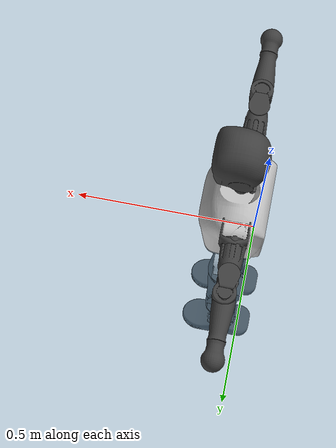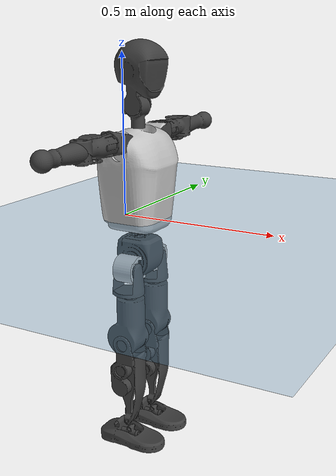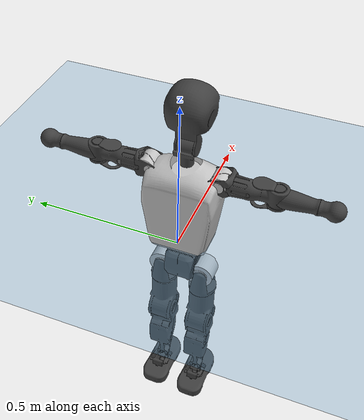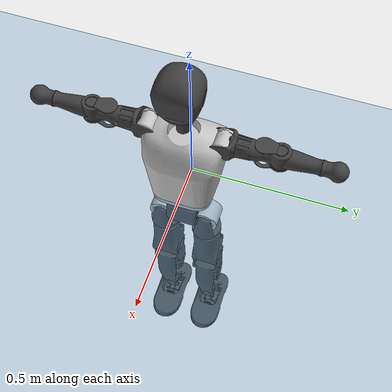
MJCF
<mujoco model="T1">
  <compiler angle="radian" assetdir="assets" balanceinertia="true" inertiafromgeom="false"/>

  <option timestep="0.005" density="1.2" viscosity="2e-05"/>

  <size nkey="1"/>

  <visual>
    <quality shadowsize="8192"/>
    <map shadowclip="0.5"/>
  </visual>

  <default>
    <default class="/">
      <joint armature="0.01" damping="0.01" frictionloss="0.1"/>
      <geom contype="0" conaffinity="0" group="1" solref="-1000 -80"/>
      <site size="0.01 0.005 0.005" group="5"/>
      <general forcelimited="true" biastype="affine" gainprm="25" biasprm="0 -25 -0.6"/>
      <default class="t1">
        <geom rgba="0.25 0.25 0.25 1"/>
        <default class="visual">
          <geom type="mesh" group="2"/>
        </default>
        <default class="collision">
          <geom group="3"/>
        </default>
        <default class="foot">
          <geom size="0.1115 0.05 0.015" type="box" condim="6" group="4" priority="1" solimp="0.015 1 0.015"/>
        </default>
        <default class="reward_collision_sphere">
          <geom group="5" rgba="1 0 0 1"/>
        </default>
      </default>
    </default>
  </default>

  <asset>
    <texture type="skybox" colorspace="auto" name="//unnamed_texture_0" builtin="gradient" rgb1="0.95 0.95 0.95" rgb2="0.95 0.95 0.95" width="100" height="600"/>
    <texture type="2d" colorspace="auto" name="texplane" builtin="checker" rgb1="0.345 0.575 0.748" rgb2="0.345 0.575 0.748" markrgb="1 1 1" width="512" height="512"/>
    <material name="MatPlane" class="/" texture="texplane" texuniform="true" texrepeat="2 2" specular="0.9"/>
    <mesh name="Trunk" class="/" file="Trunk.stl"/>
    <mesh name="H1" class="/" file="H1.stl"/>
    <mesh name="H2" class="/" file="H2.stl"/>
    <mesh name="AL1" class="/" file="AL1.stl"/>
    <mesh name="AL2" class="/" file="AL2.stl"/>
    <mesh name="AL3" class="/" file="AL3.stl"/>
    <mesh name="left_hand_link" class="/" file="left_hand_link.stl"/>
    <mesh name="AR1" class="/" file="AR1.stl"/>
    <mesh name="AR2" class="/" file="AR2.stl"/>
    <mesh name="AR3" class="/" file="AR3.stl"/>
    <mesh name="right_hand_link" class="/" file="right_hand_link.stl"/>
    <mesh name="Waist" class="/" file="Waist.stl"/>
    <mesh name="Hip_Pitch_Left" class="/" file="Hip_Pitch_Left.stl"/>
    <mesh name="Hip_Roll_Left" class="/" file="Hip_Roll_Left.stl"/>
    <mesh name="Hip_Yaw_Left" class="/" file="Hip_Yaw_Left.stl"/>
    <mesh name="Shank_Left" class="/" file="Shank_Left.stl"/>
    <mesh name="Ankle_Cross_Left" class="/" file="Ankle_Cross_Left.stl"/>
    <mesh name="left_foot_link" class="/" file="left_foot_link.stl"/>
    <mesh name="Hip_Pitch_Right" class="/" file="Hip_Pitch_Right.stl"/>
    <mesh name="Hip_Roll_Right" class="/" file="Hip_Roll_Right.stl"/>
    <mesh name="Hip_Yaw_Right" class="/" file="Hip_Yaw_Right.stl"/>
    <mesh name="Shank_Right" class="/" file="Shank_Right.stl"/>
    <mesh name="Ankle_Cross_Right" class="/" file="Ankle_Cross_Right.stl"/>
    <mesh name="right_foot_link" class="/" file="right_foot_link.stl"/>
  </asset>

  <worldbody>
    <geom name="floor" class="/" size="100 100 0.125" type="plane" group="0" material="MatPlane"/>
    <light name="toplight_shadow" class="/" pos="0 0 5" dir="0.0990148 0.0990148 -0.990148" type="directional" ambient="0.04 0.04 0.04" diffuse="0.55 0.55 0.55" specular="0.12 0.12 0.12"/>
    <light name="toplight_fill" class="/" pos="0 0 5" dir="0.0990148 0.0990148 -0.990148" type="directional" castshadow="false" ambient="0.04 0.04 0.04" diffuse="0.3 0.3 0.3" specular="0.08 0.08 0.08"/>
    <body name="trunk" childclass="t1" pos="0.000119055 -0.000148834 0.00273499" quat="1 -7.68458e-05 -0.00010965 -0.00010007">
      <inertial pos="0.0491248 -0.00374317 0.118459" quat="0.999851 0.0119358 -0.0102828 0.00709334" mass="7.9666" diaginertia="0.0486441 0.00870027 0.10292"/>
      <joint name="//unnamed_joint_0" type="free" armature="0" damping="0" frictionloss="0"/>
      <geom name="//unnamed_geom_1" class="visual" rgba="0.76 0.76 0.76 1" mesh="Trunk"/>
      <geom name="//unnamed_geom_2" class="collision" size="0.066773 0.0890306 0.133546" pos="0.0528128 0 0.136368" type="box"/>
      <geom name="//unnamed_geom_3" class="reward_collision_sphere" size="0.102385" pos="0.0528128 0 0.11364"/>
      <geom name="//unnamed_geom_4" class="reward_collision_sphere" size="0.0133546" pos="0.0528128 0.055616 0"/>
      <geom name="//unnamed_geom_5" class="reward_collision_sphere" size="0.0133546" pos="0.0528128 -0.055616 0"/>
      <geom name="//unnamed_geom_6" class="reward_collision_sphere" size="0.0133546" pos="0.0528128 0.0700108 0.204552"/>
      <geom name="//unnamed_geom_7" class="reward_collision_sphere" size="0.0133546" pos="0.0528128 -0.0700108 0.204552"/>
      <site name="imu" pos="-0.000600985 0.011492 -0.0101551" size="0.00890306"/>
      <camera name="track" pos="0 -1.30861 0" quat="0.707107 0.707107 0 0" mode="trackcom"/>
      <camera name="ego_camera" pos="0.107386 0 0.477287" quat="-0.5 -0.5 0.5 0.5"/>
      <body name="H1" pos="0.0540386 -0.00328659 0.274625" quat="0.999999 -0.000906873 -0.000751981 -0.000133315">
        <inertial pos="-0.0010558 -0.00076531 0.0672602" quat="0.764022 -0.0123996 0.00857355 0.645014" mass="0.301752" diaginertia="0.000122038 2.73062e-05 0.000277216"/>
        <joint name="AAHead_yaw" pos="0 0 0" axis="-0.00239244 -0.00817617 0.999964" stiffness="0.000357124" range="-1.52867 1.59927" armature="0.00925569" damping="0" frictionloss="0.0763902"/>
        <geom name="//unnamed_geom_8" class="visual" mesh="H1"/>
        <body name="H2" pos="-0.000367247 -0.00115399 0.0695859" quat="1 -8.38195e-05 -0.000253292 0.000367195">
          <inertial pos="0.0039259 0.00307497 0.114766" quat="0.990158 0.0926235 -0.0711777 -0.0770863" mass="0.445383" diaginertia="0.00107262 0.000226261 0.00328799"/>
          <joint name="Head_pitch" pos="0 0 0" axis="-0.0101557 -0.999909 -0.00883241" range="-1.2169 0.350925" armature="0.00856411" damping="0.00764203" frictionloss="0.087291"/>
          <geom name="//unnamed_geom_9" class="visual" mesh="H2"/>
          <geom name="//unnamed_geom_10" class="collision" size="0.0712245" pos="0.00880214 0 0.125004"/>
          <geom name="//unnamed_geom_11" class="reward_collision_sphere" size="0.0801276" pos="0.0176043 0 0.11364"/>
        </body>
      </body>
      <body name="AL1" pos="0.0496378 0.0687623 0.246423" quat="1 0.000417004 0.000326935 0.000298259">
        <inertial pos="0.000523913 0.0265598 -0.000128778" quat="0.506252 0.490836 -0.499524 0.503254" mass="0.356305" diaginertia="0.000676034 0.000150302 0.000541279"/>
        <joint name="Left_Shoulder_Pitch" pos="0 0 0" axis="0.0137472 0.99989 0.00564736" range="-3.27266 1.22837" armature="0.00750134" damping="0" frictionloss="0.078558"/>
        <geom name="//unnamed_geom_12" class="visual" rgba="0.76 0.76 0.76 1" mesh="AL1"/>
        <body name="AL2" pos="-0.000757528 0.0298575 6.69408e-05" quat="1 0.000555125 -0.000682831 0.000437986">
          <inertial pos="0.00464846 0.0274719 -0.000345235" quat="0.486091 0.513541 -0.497373 0.502604" mass="0.110639" diaginertia="0.000206382 4.08264e-05 0.000324364"/>
          <joint name="Left_Shoulder_Roll" pos="0 0 0" axis="-0.999978 0.00565691 -0.00348363" range="-1.5659 1.73645" armature="0.0101465" damping="0.0209966" frictionloss="0.0928547"/>
          <geom name="//unnamed_geom_13" class="visual" mesh="AL2"/>
          <body name="AL3" pos="-0.00215258 0.0374575 0.000112129" quat="0.999999 0.000446939 0.000508377 -0.00086965">
            <inertial pos="0.00164039 0.0556659 0.00204193" quat="0.705903 0.708289 0.000673254 -0.00511597" mass="0.731207" diaginertia="0.00680559 0.00157193 0.00117851"/>
            <joint name="Left_Elbow_Pitch" pos="0 0 0" axis="0.00531196 -0.999985 0.00121106" stiffness="0.00996632" range="-2.25233 2.29648" armature="0.00999463" damping="0.0104657" frictionloss="0.0950811"/>
            <geom name="//unnamed_geom_14" class="visual" mesh="AL3"/>
            <geom name="//unnamed_geom_15" class="collision" size="0.0267092 0.066773" pos="0 0.0327153 0" quat="0.707105 0.707108 0 0" type="cylinder"/>
            <geom name="//unnamed_geom_16" class="reward_collision_sphere" size="0.032051"/>
            <body name="left_hand_link" pos="-0.00228861 0.098244 -0.0016003" quat="1 -0.000250157 -0.000512324 -0.000462655">
              <inertial pos="0.000528449 0.0745071 -0.000540782" quat="0.707499 0.70671 0.000103548 -0.00245963" mass="0.224796" diaginertia="0.00442782 0.00101382 0.000397664"/>
              <joint name="Left_Elbow_Yaw" pos="0 0 0" axis="-0.00440528 -0.012259 0.999915" stiffness="0.00751827" range="-2.4914 0.0282156" armature="0.00784681" damping="0.00135378" frictionloss="0.100597"/>
              <geom name="//unnamed_geom_17" class="visual" mesh="left_hand_link"/>
              <geom name="//unnamed_geom_18" class="collision" size="0.0267092 0.0779018" pos="0 0.0850598 0" quat="0.707105 0.707108 0 0" type="cylinder"/>
              <geom name="//unnamed_geom_19" class="reward_collision_sphere" size="0.0445153"/>
              <geom name="//unnamed_geom_20" class="reward_collision_sphere" size="0.0311607" pos="0 0.0719737 0"/>
              <geom name="//unnamed_geom_21" class="reward_collision_sphere" size="0.0311607" pos="0 0.140676 0"/>
            </body>
          </body>
        </body>
      </body>
      <body name="AR1" pos="0.0496607 -0.0662836 0.246442" quat="1 -4.76145e-05 0.000421481 -0.000128264">
        <inertial pos="-0.000314082 -0.0319334 -0.000810231" quat="0.502275 0.495798 -0.502159 0.49974" mass="0.385949" diaginertia="0.000725267 0.000149892 0.000557772"/>
        <joint name="Right_Shoulder_Pitch" pos="0 0 0" axis="-0.00290041 -0.99998 0.00558393" range="-1.22733 3.34759" armature="0.0089223" damping="0.0183212" frictionloss="0.0815449"/>
        <geom name="//unnamed_geom_22" class="visual" rgba="0.76 0.76 0.76 1" mesh="AR1"/>
        <body name="AR2" pos="0.000941954 -0.0324923 0.000372975" quat="1 -0.000161891 -3.51744e-05 -4.80959e-05">
          <inertial pos="0.00617283 -0.0243617 -0.00053612" quat="0.506148 0.48725 -0.514072 0.492069" mass="0.11822" diaginertia="0.000215476 4.10185e-05 0.000346801"/>
          <joint name="Right_Shoulder_Roll" pos="0 0 0" axis="-0.999961 -0.000809183 -0.00882851" range="-1.73254 1.62687" armature="0.00905993" damping="0" frictionloss="0.1005"/>
          <geom name="//unnamed_geom_23" class="visual" mesh="AR2"/>
          <body name="AR3" pos="-0.00251165 -0.0397158 -0.00334696" quat="0.999999 0.000447004 -0.00111666 0.000229238">
            <inertial pos="-0.000925541 -0.053236 -0.0011526" quat="0.701751 0.712383 -0.000446581 -0.00749572" mass="0.749723" diaginertia="0.00684859 0.00154105 0.00117787"/>
            <joint name="Right_Elbow_Pitch" pos="0 0 0" axis="0.00292263 0.999994 0.00197132" stiffness="0.000746684" range="-2.32539 2.22055" armature="0.0092259" damping="0.00631875" frictionloss="0.086944"/>
            <geom name="//unnamed_geom_24" class="visual" mesh="AR3"/>
            <geom name="//unnamed_geom_25" class="collision" size="0.0267092 0.066773" pos="0 -0.0327153 0" quat="0.707105 0.707108 0 0" type="cylinder"/>
            <geom name="//unnamed_geom_26" class="reward_collision_sphere" size="0.032051"/>
            <body name="right_hand_link" pos="-0.000294251 -0.0965361 0.000530995" quat="1 5.81516e-05 6.01391e-05 -4.31094e-05">
              <inertial pos="-0.000250903 -0.0718014 -0.000570514" quat="0.710205 0.703874 -0.00259688 0.0127905" mass="0.219026" diaginertia="0.0041174 0.000947327 0.000392392"/>
              <joint name="Right_Elbow_Yaw" pos="0 0 0" axis="-0.00793736 -0.013842 0.999873" range="0.0358783 2.4848" armature="0.00906833" damping="0.00695386" frictionloss="0.0936032"/>
              <geom name="//unnamed_geom_27" class="visual" mesh="right_hand_link"/>
              <geom name="//unnamed_geom_28" class="collision" size="0.0267092 0.0779018" pos="0 -0.0850598 0" quat="0.707105 0.707108 0 0" type="cylinder"/>
              <geom name="//unnamed_geom_29" class="reward_collision_sphere" size="0.0445153"/>
              <geom name="//unnamed_geom_30" class="reward_collision_sphere" size="0.0311607" pos="0 -0.0719737 0"/>
              <geom name="//unnamed_geom_31" class="reward_collision_sphere" size="0.0311607" pos="0 -0.140676 0"/>
            </body>
          </body>
        </body>
      </body>
      <body name="Waist" pos="0.0546745 -0.001785 -0.130731" quat="0.999999 0.00143427 0.000845634 -1.95188e-05">
        <inertial pos="0.000817936 -0.0035649 0.00791717" quat="0.983568 0.000351377 -0.180519 0.00259495" mass="1.86354" diaginertia="0.00283525 0.000627483 0.00869422"/>
        <joint name="Waist" pos="0 0 0" axis="-0.00934874 -0.0123726 0.99988" stiffness="0.00808363" range="-1.56431 1.5732" armature="0.00946356" damping="0" frictionloss="0.0811551"/>
        <geom name="//unnamed_geom_32" class="visual" mesh="Waist"/>
        <body name="Hip_Pitch_Left" pos="0.00387655 0.0679987 0.00228165" quat="0.999999 -0.00102437 -0.00091118 0.00050647">
          <inertial pos="-8.88992e-05 -0.00629055 -0.0209409" quat="0.975749 0.218336 0.00884308 0.0128128" mass="0.718337" diaginertia="0.000922727 0.000172533 0.00223208"/>
          <joint name="Left_Hip_Pitch" pos="0 0 0" axis="-0.00330446 0.99996 -0.00825493" range="-1.78791 1.59677" armature="0.00841217" damping="0.00611171" frictionloss="0.0976401"/>
          <geom name="//unnamed_geom_33" class="visual" rgba="0.76 0.76 0.76 1" mesh="Hip_Pitch_Left"/>
          <body name="Hip_Roll_Left" pos="0.00194439 0.00231154 -0.0202223" quat="1 -1.70918e-05 -5.56688e-05 0.000416069">
            <inertial pos="-0.000969811 -0.00290637 -0.060342" quat="0.707113 -0.00707361 -0.000179611 0.707065" mass="0.268026" diaginertia="0.000891378 0.000180486 0.000957523"/>
            <joint name="Left_Hip_Roll" pos="0 0 0" axis="-0.999991 -0.0042523 -3.04755e-05" stiffness="0.00219151" range="-1.62352 0.241192" armature="0.00977755" damping="0.0111374" frictionloss="0.0937017"/>
            <geom name="//unnamed_geom_34" class="visual" mesh="Hip_Roll_Left"/>
            <geom name="//unnamed_geom_35" class="reward_collision_sphere" size="0.0489668"/>
            <body name="Hip_Yaw_Left" pos="0.000461602 0.00224748 -0.0911879" quat="0.999999 -0.000177122 -0.000904627 0.000468313">
              <inertial pos="-0.00617429 -0.000457732 -0.104117" quat="0.698236 -0.0338806 -0.031015 0.714393" mass="1.53717" diaginertia="0.0130304 0.00300924 0.00504662"/>
              <joint name="Left_Hip_Yaw" pos="0 0 0" axis="-0.00791626 0.00704749 -0.999944" stiffness="0.00186014" range="-0.997855 0.971866" armature="0.00858072" damping="0.00643009" frictionloss="0.0999338"/>
              <geom name="//unnamed_geom_36" class="visual" mesh="Hip_Yaw_Left"/>
              <geom name="//unnamed_geom_37" class="collision" size="0.0445153 0.0712245" type="cylinder"/>
              <body name="Shank_Left" pos="-0.00856075 0.00123657 -0.154375" quat="1 0.000161518 4.18938e-05 0.000291326">
                <inertial pos="-0.00277525 -0.00229387 -0.14221" quat="0.997566 0.00143734 -0.0238786 0.0654993" mass="1.18985" diaginertia="0.0181227 0.00401537 0.00354103"/>
                <joint name="Left_Knee_Pitch" pos="0 0 0" axis="7.14244e-05 0.999982 -0.00605917" stiffness="0.00865954" range="0.0520896 2.38603" armature="0.00877435" damping="0.0127962" frictionloss="0.0849136"/>
                <geom name="//unnamed_geom_38" class="visual" mesh="Shank_Left"/>
                <geom name="//unnamed_geom_39" class="collision" size="0.0445153 0.066773" pos="0 0 -0.136368" type="cylinder"/>
                <geom name="//unnamed_geom_40" class="reward_collision_sphere" size="0.0578699"/>
                <body name="Ankle_Cross_Left" pos="-0.00085034 0.000752316 -0.317044" quat="0.999999 -9.67716e-05 -0.00129373 -0.000720101">
                  <inertial pos="-0.000374705 0.00103699 -0.0117432" quat="0.44373 0.551093 0.550745 0.44281" mass="0.0518366" diaginertia="1.54751e-05 2.93491e-06 2.11099e-05"/>
                  <joint name="Left_Ankle_Pitch" pos="0 0 0" axis="-0.00845699 0.999875 0.0133739" stiffness="0.00932825" range="-0.897579 0.378833" armature="0.00862026" damping="0.0217969" frictionloss="0.0764966"/>
                  <geom name="//unnamed_geom_41" class="visual" mesh="Ankle_Cross_Left"/>
                  <body name="left_foot_link" pos="-0.00153519 0.00448136 -0.0156015" quat="1 -2.20349e-05 -5.95847e-05 -3.3818e-05">
                    <inertial pos="0.00137067 0.00262787 -0.0101938" quat="0.00994202 0.628526 0.00133675 0.777724" mass="0.477577" diaginertia="0.00145848 0.000299377 0.0043252"/>
                    <joint name="Left_Ankle_Roll" pos="0 0 0" axis="-0.999871 -0.00322534 0.015718" stiffness="0.00300173" range="-0.473349 0.475854" armature="0.00936447" damping="0.00980008" frictionloss="0.0962791"/>
                    <geom name="//unnamed_geom_42" class="visual" mesh="left_foot_link"/>
                    <geom name="left_foot" class="foot" size="0.103605 0.0523066 0.0130891" pos="0.00880214 0 -0.017046"/>
                    <geom name="//unnamed_geom_44" class="reward_collision_sphere" size="0.0462959" pos="0.00880214 0 -0.017046"/>
                    <geom name="//unnamed_geom_45" class="reward_collision_sphere" size="0.0267092" pos="0.0836203 -0.015049 -0.017046"/>
                    <geom name="//unnamed_geom_46" class="reward_collision_sphere" size="0.0267092" pos="-0.061615 -0.015049 -0.017046"/>
                    <site name="left_foot" class="foot" pos="0.00880214 0 -0.017046" size="0.00890306"/>
                  </body>
                </body>
              </body>
            </body>
          </body>
        </body>
        <body name="Hip_Pitch_Right" pos="0.0024872 -0.0686559 -0.00229981" quat="1 -0.000116601 -2.44689e-05 1.57934e-05">
          <inertial pos="-0.00178995 0.00469515 -0.0201142" quat="0.973187 -0.228803 0.0155832 -0.0177033" mass="0.680243" diaginertia="0.000921367 0.000169333 0.00229928"/>
          <joint name="Right_Hip_Pitch" pos="0 0 0" axis="-0.00363008 -0.999955 -0.00871291" range="-1.56516 1.74162" armature="0.00914143" damping="0.00478925" frictionloss="0.0778819"/>
          <geom name="//unnamed_geom_47" class="visual" rgba="0.76 0.76 0.76 1" mesh="Hip_Pitch_Right"/>
          <body name="Hip_Roll_Right" pos="-0.00043868 -0.0024832 -0.023443" quat="1 -6.74314e-05 -0.000184142 -0.000181485">
            <inertial pos="0.00100647 -0.00206183 -0.0637701" quat="0.701203 0.000370822 -0.00377813 0.712952" mass="0.268191" diaginertia="0.000903286 0.000178785 0.000967376"/>
            <joint name="Right_Hip_Roll" pos="0 0 0" axis="-0.999988 -0.00234842 -0.00433064" range="-0.179039 1.57124" armature="0.00879544" damping="0.0127186" frictionloss="0.0769709"/>
            <geom name="//unnamed_geom_48" class="visual" mesh="Hip_Roll_Right"/>
            <geom name="//unnamed_geom_49" class="reward_collision_sphere" size="0.0489668"/>
            <body name="Hip_Yaw_Right" pos="0.00312704 0.00175279 -0.0913117" quat="0.999999 0.000229504 -0.0013839 0.000273574">
              <inertial pos="-0.00624629 -0.0012961 -0.099128" quat="0.712491 -0.0282345 -0.0412744 0.699897" mass="1.56814" diaginertia="0.0133863 0.00298817 0.00481467"/>
              <joint name="Right_Hip_Yaw" pos="0 0 0" axis="-0.00234612 -0.0171266 -0.999851" stiffness="0.00197229" range="-1.05949 1.05589" armature="0.00884447" damping="0.0177695" frictionloss="0.0893774"/>
              <geom name="//unnamed_geom_50" class="visual" mesh="Hip_Yaw_Right"/>
              <geom name="//unnamed_geom_51" class="collision" size="0.0445153 0.0712245" type="cylinder"/>
              <body name="Shank_Right" pos="-0.0129383 0.0022008 -0.153203" quat="1 0.00022246 -0.000536295 -0.000133485">
                <inertial pos="-0.00588355 -0.000705634 -0.141893" quat="0.999265 -0.000850431 -0.0234906 -0.030285" mass="1.22699" diaginertia="0.0178388 0.00396508 0.00360477"/>
                <joint name="Right_Knee_Pitch" pos="0 0 0" axis="0.000618043 -0.999999 -0.00106243" range="-2.28961 0.0380133" armature="0.00895686" damping="0.0136813" frictionloss="0.0870771"/>
                <geom name="//unnamed_geom_52" class="visual" mesh="Shank_Right"/>
                <geom name="//unnamed_geom_53" class="collision" size="0.0445153 0.066773" pos="0 0 -0.136368" type="cylinder"/>
                <geom name="//unnamed_geom_54" class="reward_collision_sphere" size="0.0578699"/>
                <body name="Ankle_Cross_Right" pos="-0.00094833 0.000887075 -0.317211" quat="0.999999 -0.000600793 0.00114455 -6.48745e-05">
                  <inertial pos="-0.00384792 0.0005224 -0.0108659" quat="0.435822 0.553722 0.552906 0.444687" mass="0.0501817" diaginertia="1.47028e-05 3.09112e-06 2.04866e-05"/>
                  <joint name="Right_Ankle_Pitch" pos="0 0 0" axis="-0.00640783 -0.999932 -0.00978724" range="-0.292004 0.904215" armature="0.00887223" damping="0" frictionloss="0.077322"/>
                  <geom name="//unnamed_geom_55" class="visual" mesh="Ankle_Cross_Right"/>
                  <body name="right_foot_link" pos="0.00178572 -0.00190518 -0.0121608" quat="1 -0.000817041 -0.000438245 0.000213892">
                    <inertial pos="-0.000962183 -0.00307366 -0.0101271" quat="-0.00972188 0.621095 0.010188 0.783609" mass="0.487745" diaginertia="0.0014165 0.000283245 0.00396712"/>
                    <joint name="Right_Ankle_Roll" pos="0 0 0" axis="-0.999999 -0.00131498 3.25281e-05" stiffness="0.00865137" range="-0.440557 0.418392" armature="0.0100064" damping="0.0138248" frictionloss="0.0867618"/>
                    <geom name="//unnamed_geom_56" class="visual" mesh="right_foot_link"/>
                    <geom name="right_foot" class="foot" size="0.101179 0.0463494 0.0135767" pos="0.00880214 0 -0.017046"/>
                    <geom name="//unnamed_geom_58" class="reward_collision_sphere" size="0.0356122"/>
                    <geom name="//unnamed_geom_59" class="reward_collision_sphere" size="0.0267092" pos="0.00880214 0 -0.017046"/>
                    <geom name="//unnamed_geom_60" class="reward_collision_sphere" size="0.0267092" pos="0.0836203 0.015049 -0.017046"/>
                    <geom name="//unnamed_geom_61" class="reward_collision_sphere" size="0.0267092" pos="-0.061615 0.015049 -0.017046"/>
                    <site name="right_foot" class="foot" pos="0.00880214 0 -0.017046" size="0.00890306"/>
                  </body>
                </body>
              </body>
            </body>
          </body>
        </body>
      </body>
    </body>
  </worldbody>

  <contact>
    <pair class="/" geom1="floor" geom2="left_foot" name="//unnamed_contact_0"/>
    <pair class="/" geom1="floor" geom2="right_foot" name="//unnamed_contact_1"/>
  </contact>

  <actuator>
    <general name="AAHead_yaw" class="/" joint="AAHead_yaw" forcerange="-6.89898 6.89898" gainprm="22.2752" biasprm="0 -22.2752 -0.483842"/>
    <general name="Head_pitch" class="/" joint="Head_pitch" forcerange="-6.88311 6.88311" gainprm="22.2752" biasprm="0 -22.2752 -0.483842"/>
    <general name="Left_Shoulder_Pitch" class="/" joint="Left_Shoulder_Pitch" forcerange="-14.7167 14.7167" gainprm="22.2752" biasprm="0 -22.2752 -0.483842"/>
    <general name="Left_Shoulder_Roll" class="/" joint="Left_Shoulder_Roll" forcerange="-15.4362 15.4362" gainprm="22.2752" biasprm="0 -22.2752 -0.483842"/>
    <general name="Left_Elbow_Pitch" class="/" joint="Left_Elbow_Pitch" forcerange="-17.2299 17.2299" gainprm="22.2752" biasprm="0 -22.2752 -0.483842"/>
    <general name="Left_Elbow_Yaw" class="/" joint="Left_Elbow_Yaw" forcerange="-14.3757 14.3757" gainprm="22.2752" biasprm="0 -22.2752 -0.483842"/>
    <general name="Right_Shoulder_Pitch" class="/" joint="Right_Shoulder_Pitch" forcerange="-15.172 15.172" gainprm="22.2752" biasprm="0 -22.2752 -0.483842"/>
    <general name="Right_Shoulder_Roll" class="/" joint="Right_Shoulder_Roll" forcerange="-16.2812 16.2812" gainprm="22.2752" biasprm="0 -22.2752 -0.483842"/>
    <general name="Right_Elbow_Pitch" class="/" joint="Right_Elbow_Pitch" forcerange="-17.1395 17.1395" gainprm="22.2752" biasprm="0 -22.2752 -0.483842"/>
    <general name="Right_Elbow_Yaw" class="/" joint="Right_Elbow_Yaw" forcerange="-17.2391 17.2391" gainprm="22.2752" biasprm="0 -22.2752 -0.483842"/>
    <general name="Waist" class="/" joint="Waist" forcerange="-26.7832 26.7832" gainprm="22.2752" biasprm="0 -22.2752 -0.483842"/>
    <general name="Left_Hip_Pitch" class="/" joint="Left_Hip_Pitch" forcerange="-37.6532 37.6532" gainprm="22.2752" biasprm="0 -22.2752 -0.483842"/>
    <general name="Left_Hip_Roll" class="/" joint="Left_Hip_Roll" forcerange="-28.9032 28.9032" gainprm="22.2752" biasprm="0 -22.2752 -0.483842"/>
    <general name="Left_Hip_Yaw" class="/" joint="Left_Hip_Yaw" forcerange="-25.6023 25.6023" gainprm="22.2752" biasprm="0 -22.2752 -0.483842"/>
    <general name="Left_Knee_Pitch" class="/" joint="Left_Knee_Pitch" forcerange="-58.6031 58.6031" gainprm="22.2752" biasprm="0 -22.2752 -0.483842"/>
    <general name="Left_Ankle_Pitch" class="/" joint="Left_Ankle_Pitch" forcerange="-17.4587 17.4587" gainprm="22.2752" biasprm="0 -22.2752 -0.483842"/>
    <general name="Left_Ankle_Roll" class="/" joint="Left_Ankle_Roll" forcerange="-13.8723 13.8723" gainprm="22.2752" biasprm="0 -22.2752 -0.483842"/>
    <general name="Right_Hip_Pitch" class="/" joint="Right_Hip_Pitch" forcerange="-39.4516 39.4516" gainprm="22.2752" biasprm="0 -22.2752 -0.483842"/>
    <general name="Right_Hip_Roll" class="/" joint="Right_Hip_Roll" forcerange="-23.9623 23.9623" gainprm="22.2752" biasprm="0 -22.2752 -0.483842"/>
    <general name="Right_Hip_Yaw" class="/" joint="Right_Hip_Yaw" forcerange="-24.0584 24.0584" gainprm="22.2752" biasprm="0 -22.2752 -0.483842"/>
    <general name="Right_Knee_Pitch" class="/" joint="Right_Knee_Pitch" forcerange="-58.2547 58.2547" gainprm="22.2752" biasprm="0 -22.2752 -0.483842"/>
    <general name="Right_Ankle_Pitch" class="/" joint="Right_Ankle_Pitch" forcerange="-19.6972 19.6972" gainprm="22.2752" biasprm="0 -22.2752 -0.483842"/>
    <general name="Right_Ankle_Roll" class="/" joint="Right_Ankle_Roll" forcerange="-12.4574 12.4574" gainprm="22.2752" biasprm="0 -22.2752 -0.483842"/>
  </actuator>

  <sensor>
    <gyro site="imu" name="imu_angular_velocity"/>
    <velocimeter site="imu" name="imu_linear_velocity"/>
    <framelinvel objtype="site" objname="left_foot" name="left_foot_global_linear_velocity"/>
    <framelinvel objtype="site" objname="right_foot" name="right_foot_global_linear_velocity"/>
  </sensor>

  <keyframe>
    <key name="home" qpos="0 0 0.6385 1 0 0 0 0 0 0 1.4 0 -0.4 0 -1.4 0 0.4 0 -0.4 0 0 0.8 -0.4 0 0.4 0 0 -0.8 0.4 0"/>
  </keyframe>
</mujoco>
